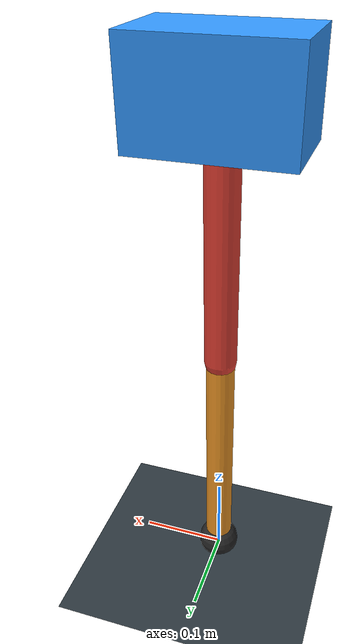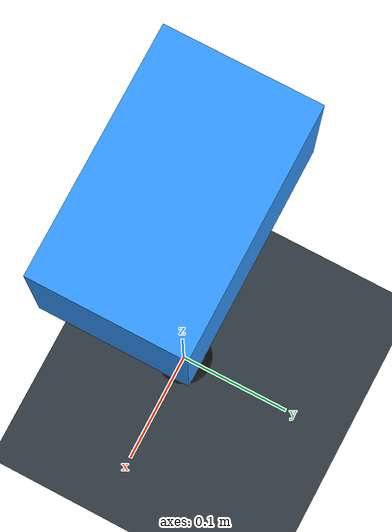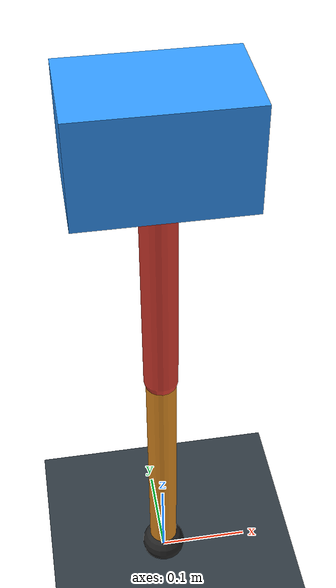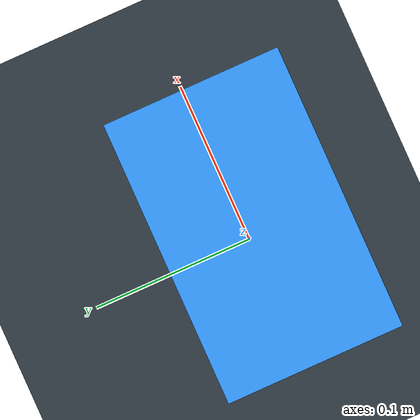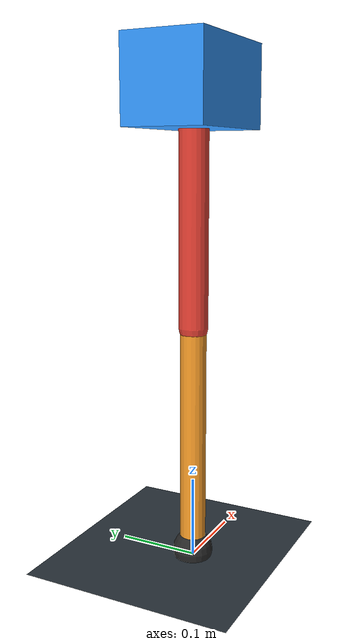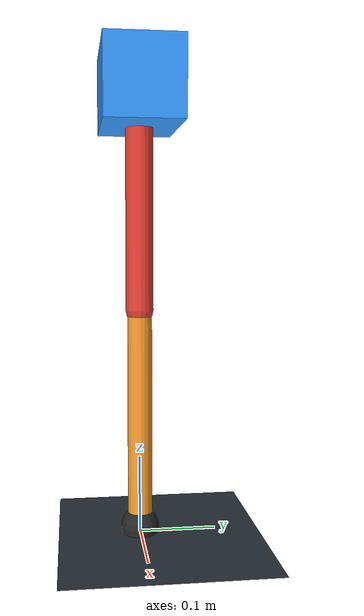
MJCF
<mujoco model="single_axis_two_bar">
  <compiler angle="radian" inertiafromgeom="true"/>
  <option timestep="0.001" integrator="implicitfast" gravity="0 0 -9.81"/>
  <default>
    <joint damping="0.08"/>
    <geom friction="1.2 0.01 0.0001" condim="3"/>
  </default>
  <worldbody>
    <geom name="floor" type="plane" size="5 5 0.1" rgba="0.18 0.22 0.25 1"/>
    <body name="carriage" pos="0 0 0.5786297799050943">
      <joint name="pole_slide" type="slide" axis="0 0 1"/>
      <geom name="payload" type="box" size="0.08 0.05 0.05" mass="3.043310799618312" rgba="0.2 0.6 1 1"/>
      <body name="thigh" pos="0 0 0">
        <joint name="hip" type="hinge" axis="0 1 0"/>
        <geom name="thigh_link" type="capsule" fromto="0 0 0 0 0 -0.28392321919431196" size="0.018" mass="0.2022990453902813" rgba="0.9 0.25 0.2 1"/>
        <body name="shank" pos="0 0 -0.28392321919431196">
          <joint name="knee" type="hinge" axis="0 1 0"/>
          <geom name="shank_link" type="capsule" fromto="0 0 0 0 0 -0.2868291312233111" size="0.016" mass="0.20436954610918287" rgba="0.95 0.6 0.15 1"/>
          <geom name="foot" type="sphere" pos="0 0 -0.2868291312233111" size="0.025" mass="0.03" rgba="0.15 0.15 0.15 1"/>
          <site name="toe" pos="0 0 -0.2868291312233111" size="0.008"/>
        </body>
      </body>
    </body>
  </worldbody>
  <actuator>
    <motor name="hip_motor" joint="hip" ctrlrange="-55.19761641844999 55.19761641844999"/>
    <motor name="knee_motor" joint="knee" ctrlrange="-90.75004135295741 90.75004135295741"/>
  </actuator>
</mujoco>
